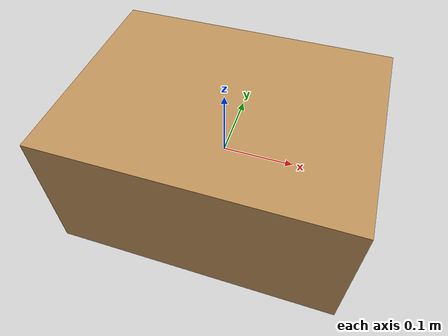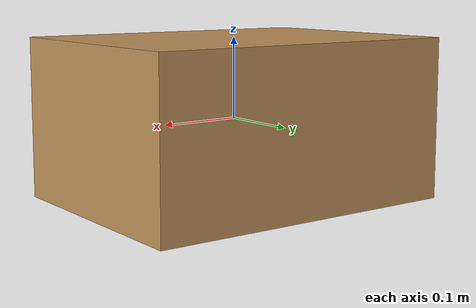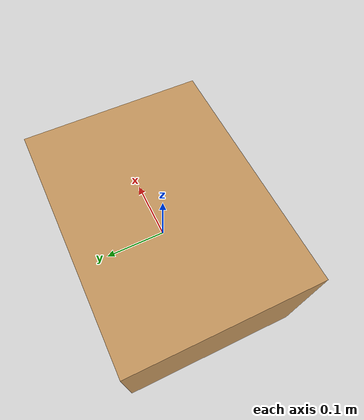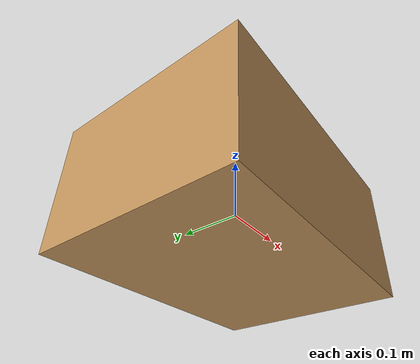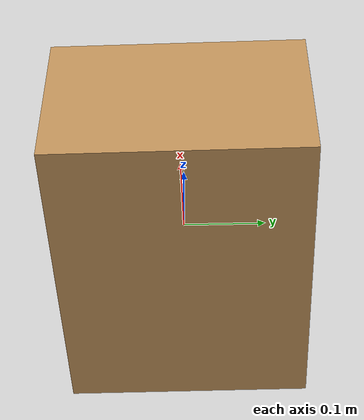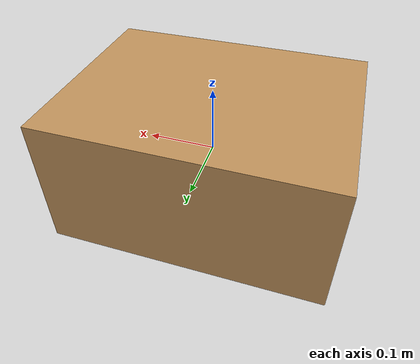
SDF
<?xml version="1.0" ?>
<sdf version="1.8">
  <model name="palletizing_box">
    <link name="link">
      <pose>0 0 0 0 0 0</pose>
      <gravity>true</gravity>

      <inertial>
        <mass>2.0</mass>
        <inertia>
          <ixx>0.0217</ixx>
          <ixy>0</ixy>
          <ixz>0</ixz>
          <iyy>0.0333</iyy>
          <iyz>0</iyz>
          <izz>0.0417</izz>
        </inertia>
      </inertial>

      <collision name="collision">
        <geometry>
          <box>
            <size>0.40 0.30 0.20</size>
          </box>
        </geometry>
        <surface>
          <contact>
            <ode>
              <kp>100000</kp>
              <kd>10</kd>
            </ode>
          </contact>
          <friction>
            <ode>
              <!-- mu=0.8 lets the belt grip and drag the box cleanly. -->
              <mu>0.8</mu>
              <mu2>0.8</mu2>
            </ode>
          </friction>
        </surface>
      </collision>

      <visual name="visual">
        <geometry>
          <box>
            <size>0.40 0.30 0.20</size>
          </box>
        </geometry>
        <material>
          <ambient>0.52 0.40 0.24 1</ambient>
          <diffuse>0.76 0.58 0.36 1</diffuse>
          <specular>0.05 0.05 0.05 1</specular>
        </material>
      </visual>
    </link>
  </model>
</sdf>
